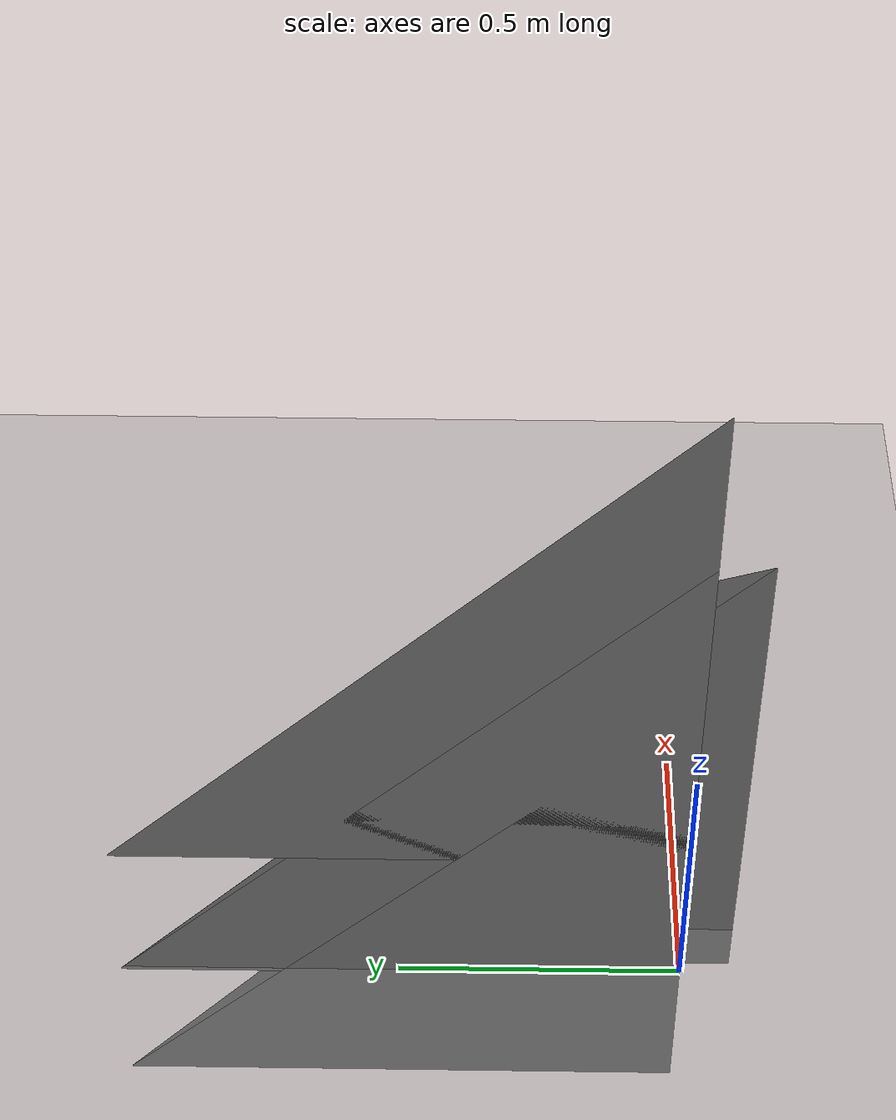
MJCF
<mujoco model="contact_route_plane_mesh">
  <option gravity="0 0 0"/>
  <asset>
    <mesh name="tetra" vertex="0 0 0 1 0 0 0 1 0 0 0 1"
          face="0 2 1 0 1 3 0 3 2 1 2 3"/>
  </asset>
  <contact>
    <pair geom1="plane" geom2="mesh_no_contact"/>
    <pair geom1="plane" geom2="mesh_shallow"/>
    <pair geom1="plane" geom2="mesh_deep"/>
    <pair geom1="plane" geom2="mesh_off_axis"/>
  </contact>
  <worldbody>
    <geom name="plane" type="plane" size="2 2 0.1"/>
    <body name="mesh_no_contact" pos="0 0 0.3">
      <freejoint/>
      <inertial pos="0 0 0" mass="1" diaginertia="1 1 1"/>
      <geom name="mesh_no_contact" type="mesh" mesh="tetra"/>
    </body>
    <body name="mesh_shallow" pos="0 0 -0.01">
      <freejoint/>
      <inertial pos="0 0 0" mass="1" diaginertia="1 1 1"/>
      <geom name="mesh_shallow" type="mesh" mesh="tetra"/>
    </body>
    <body name="mesh_deep" pos="0 0 -0.3">
      <freejoint/>
      <inertial pos="0 0 0" mass="1" diaginertia="1 1 1"/>
      <geom name="mesh_deep" type="mesh" mesh="tetra"/>
    </body>
    <body name="mesh_off_axis" pos="0.1 -0.1 -0.1" euler="0.3 0.2 0.4">
      <freejoint/>
      <inertial pos="0 0 0" mass="1" diaginertia="1 1 1"/>
      <geom name="mesh_off_axis" type="mesh" mesh="tetra"/>
    </body>
  </worldbody>
</mujoco>
